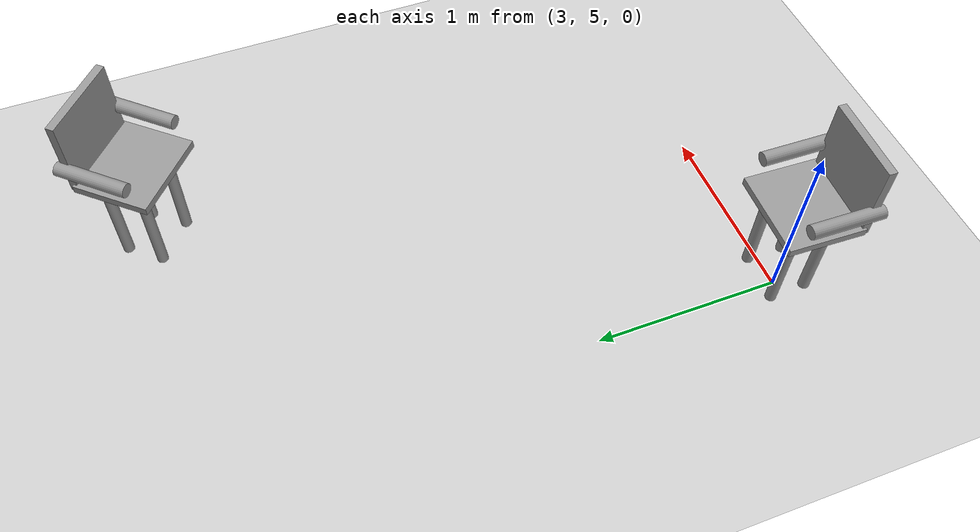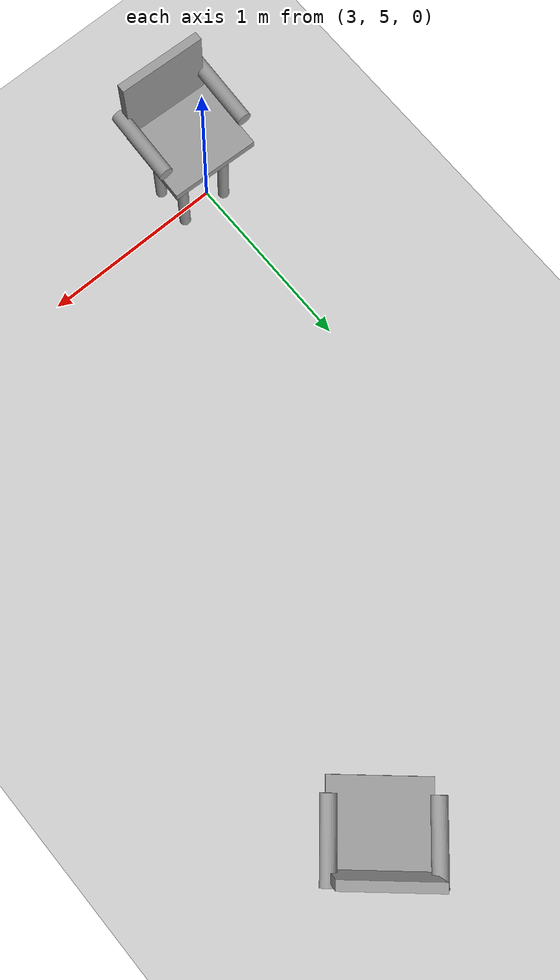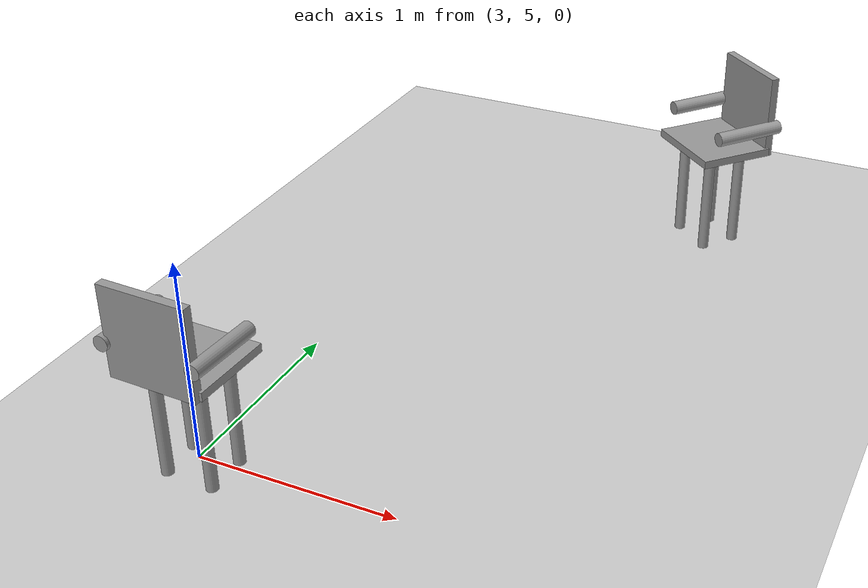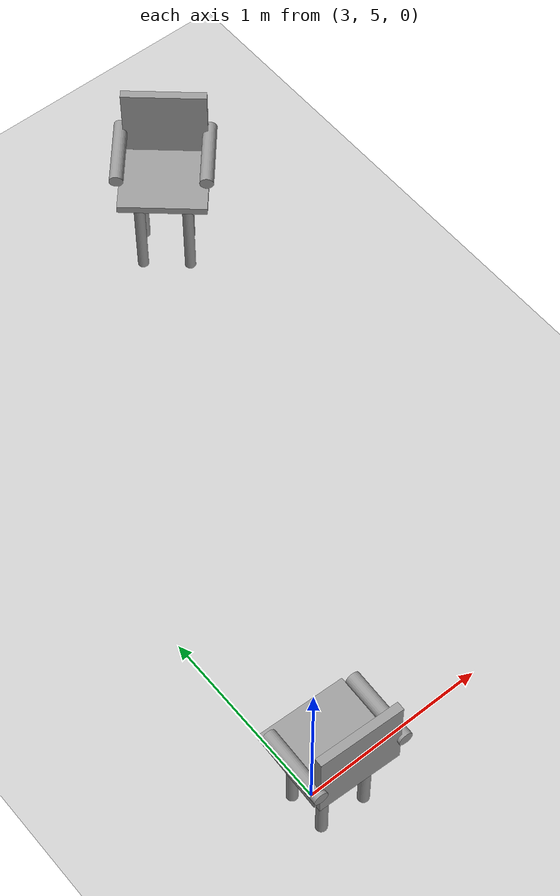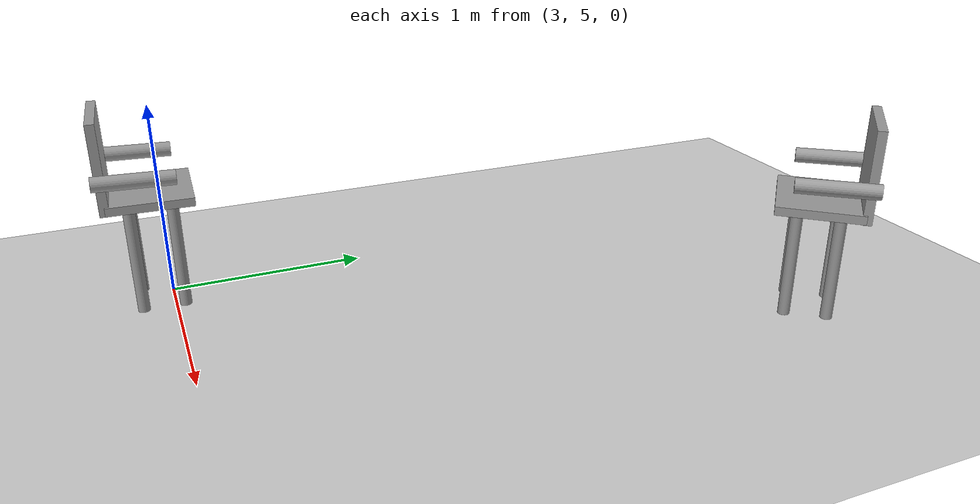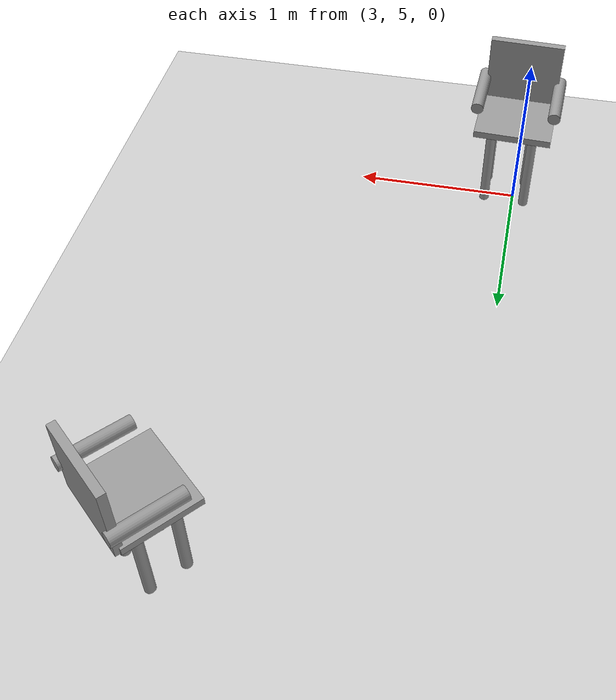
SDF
<sdf version="1.6">
 <world name="default">
  <model name="ground_plane">
   <static>1</static>
   <link name="link">
    <collision name="collision">
     <geometry><plane><normal>0 0 1</normal><size>100 100</size></plane></geometry>
     <surface>
      <contact><collide_bitmask>65535</collide_bitmask></contact>
      <friction><ode><mu>100</mu><mu2>50</mu2></ode></friction>
     </surface>
    </collision>
    <visual name="visual">
     <cast_shadows>0</cast_shadows>
     <geometry><plane><normal>0 0 1</normal><size>100 100</size></plane></geometry>
     <material>
      <script><uri>file://media/materials/scripts/gazebo.material</uri><name>Gazebo/Grey</name></script>
     </material>
    </visual>
   </link>
  </model>
  <model name="chair_clone_clone_clone">
   <link name="link_4">
    <inertial>
     <mass>0.00194051</mass>
     <inertia>
      <ixx>5.14044e-05</ixx>
      <ixy>0</ixy>
      <ixz>0</ixz>
      <iyy>5.14044e-05</iyy>
      <iyz>0</iyz>
      <izz>8.34973e-07</izz>
     </inertia>
    </inertial>
    <pose>-0.140129 -0.127166 -0.209129 0 -0 0</pose>
    <visual name="visual">
     <geometry><cylinder><radius>0.0293355</radius><length>0.561516</length></cylinder></geometry>
     <material>
      <lighting>1</lighting>
      <script><uri>file://media/materials/scripts/gazebo.material</uri><name>Gazebo/Grey</name></script>
      <emissive>0 0 0 1</emissive>
     </material>
    </visual>
    <collision name="collision">
     <geometry><cylinder><radius>0.029336</radius><length>0.561516</length></cylinder></geometry>
     <surface>
      <friction>
       <ode><mu>1</mu><mu2>1</mu2><fdir1>0 0 0</fdir1><slip1>0</slip1><slip2>0</slip2></ode>
       <torsional>
        <coefficient>1</coefficient>
        <patch_radius>0</patch_radius>
        <surface_radius>0</surface_radius>
        <use_patch_radius>1</use_patch_radius>
        <ode><slip>0</slip></ode>
       </torsional>
      </friction>
      <bounce><restitution_coefficient>0</restitution_coefficient><threshold>1e+06</threshold></bounce>
      <contact>
       <collide_without_contact>0</collide_without_contact>
       <collide_without_contact_bitmask>1</collide_without_contact_bitmask>
       <collide_bitmask>1</collide_bitmask>
       <ode>
        <soft_cfm>0</soft_cfm>
        <soft_erp>0.2</soft_erp>
        <kp>1e+13</kp>
        <kd>1</kd>
        <max_vel>0.01</max_vel>
        <min_depth>0</min_depth>
       </ode>
       <bullet>
        <split_impulse>1</split_impulse>
        <split_impulse_penetration_threshold>-0.01</split_impulse_penetration_threshold>
        <soft_cfm>0</soft_cfm>
        <soft_erp>0.2</soft_erp>
        <kp>1e+13</kp>
        <kd>1</kd>
       </bullet>
      </contact>
     </surface>
    </collision>
   </link>
   <link name="link_4_clone">
    <inertial>
     <mass>0.00194051</mass>
     <inertia>
      <ixx>5.14044e-05</ixx>
      <ixy>0</ixy>
      <ixz>0</ixz>
      <iyy>5.14044e-05</iyy>
      <iyz>0</iyz>
      <izz>8.34973e-07</izz>
     </inertia>
    </inertial>
    <pose>-0.139565 0.126187 -0.209129 0 -0 0</pose>
    <visual name="visual">
     <geometry><cylinder><radius>0.0293355</radius><length>0.561516</length></cylinder></geometry>
     <material>
      <lighting>1</lighting>
      <script><uri>file://media/materials/scripts/gazebo.material</uri><name>Gazebo/Grey</name></script>
      <shader type="pixel"/>
      <emissive>0 0 0 1</emissive>
     </material>
    </visual>
    <collision name="collision">
     <geometry><cylinder><radius>0.029336</radius><length>0.561516</length></cylinder></geometry>
     <surface>
      <friction>
       <ode><mu>1</mu><mu2>1</mu2><fdir1>0 0 0</fdir1><slip1>0</slip1><slip2>0</slip2></ode>
       <torsional>
        <coefficient>1</coefficient>
        <patch_radius>0</patch_radius>
        <surface_radius>0</surface_radius>
        <use_patch_radius>1</use_patch_radius>
        <ode><slip>0</slip></ode>
       </torsional>
      </friction>
      <bounce><restitution_coefficient>0</restitution_coefficient><threshold>1e+06</threshold></bounce>
      <contact>
       <collide_without_contact>0</collide_without_contact>
       <collide_without_contact_bitmask>1</collide_without_contact_bitmask>
       <collide_bitmask>1</collide_bitmask>
       <ode>
        <soft_cfm>0</soft_cfm>
        <soft_erp>0.2</soft_erp>
        <kp>1e+13</kp>
        <kd>1</kd>
        <max_vel>0.01</max_vel>
        <min_depth>0</min_depth>
       </ode>
       <bullet>
        <split_impulse>1</split_impulse>
        <split_impulse_penetration_threshold>-0.01</split_impulse_penetration_threshold>
        <soft_cfm>0</soft_cfm>
        <soft_erp>0.2</soft_erp>
        <kp>1e+13</kp>
        <kd>1</kd>
       </bullet>
      </contact>
     </surface>
    </collision>
   </link>
   <link name="link_4_clone_0">
    <inertial>
     <mass>0.00194051</mass>
     <inertia>
      <ixx>5.14044e-05</ixx>
      <ixy>0</ixy>
      <ixz>0</ixz>
      <iyy>5.14044e-05</iyy>
      <iyz>0</iyz>
      <izz>8.34973e-07</izz>
     </inertia>
    </inertial>
    <pose>0.062929 0.13105 -0.209129 0 -0 0</pose>
    <visual name="visual">
     <geometry><cylinder><radius>0.0293355</radius><length>0.561516</length></cylinder></geometry>
     <material>
      <lighting>1</lighting>
      <script><uri>file://media/materials/scripts/gazebo.material</uri><name>Gazebo/Grey</name></script>
      <shader type="pixel"/>
      <emissive>0 0 0 1</emissive>
     </material>
    </visual>
    <collision name="collision">
     <geometry><cylinder><radius>0.029336</radius><length>0.561516</length></cylinder></geometry>
     <surface>
      <friction>
       <ode><mu>1</mu><mu2>1</mu2><fdir1>0 0 0</fdir1><slip1>0</slip1><slip2>0</slip2></ode>
       <torsional>
        <coefficient>1</coefficient>
        <patch_radius>0</patch_radius>
        <surface_radius>0</surface_radius>
        <use_patch_radius>1</use_patch_radius>
        <ode><slip>0</slip></ode>
       </torsional>
      </friction>
      <bounce><restitution_coefficient>0</restitution_coefficient><threshold>1e+06</threshold></bounce>
      <contact>
       <collide_without_contact>0</collide_without_contact>
       <collide_without_contact_bitmask>1</collide_without_contact_bitmask>
       <collide_bitmask>1</collide_bitmask>
       <ode>
        <soft_cfm>0</soft_cfm>
        <soft_erp>0.2</soft_erp>
        <kp>1e+13</kp>
        <kd>1</kd>
        <max_vel>0.01</max_vel>
        <min_depth>0</min_depth>
       </ode>
       <bullet>
        <split_impulse>1</split_impulse>
        <split_impulse_penetration_threshold>-0.01</split_impulse_penetration_threshold>
        <soft_cfm>0</soft_cfm>
        <soft_erp>0.2</soft_erp>
        <kp>1e+13</kp>
        <kd>1</kd>
       </bullet>
      </contact>
     </surface>
    </collision>
   </link>
   <link name="link_4_clone_1">
    <inertial>
     <mass>0.00194051</mass>
     <inertia>
      <ixx>5.14044e-05</ixx>
      <ixy>0</ixy>
      <ixz>0</ixz>
      <iyy>5.14044e-05</iyy>
      <iyz>0</iyz>
      <izz>8.34973e-07</izz>
     </inertia>
    </inertial>
    <pose>0.061641 -0.111934 -0.209129 0 -0 0</pose>
    <visual name="visual">
     <geometry><cylinder><radius>0.0293355</radius><length>0.561516</length></cylinder></geometry>
     <material>
      <lighting>1</lighting>
      <script><uri>file://media/materials/scripts/gazebo.material</uri><name>Gazebo/Grey</name></script>
      <shader type="pixel"/>
      <emissive>0 0 0 1</emissive>
     </material>
    </visual>
    <collision name="collision">
     <geometry><cylinder><radius>0.029336</radius><length>0.561516</length></cylinder></geometry>
     <surface>
      <friction>
       <ode><mu>1</mu><mu2>1</mu2><fdir1>0 0 0</fdir1><slip1>0</slip1><slip2>0</slip2></ode>
       <torsional>
        <coefficient>1</coefficient>
        <patch_radius>0</patch_radius>
        <surface_radius>0</surface_radius>
        <use_patch_radius>1</use_patch_radius>
        <ode><slip>0</slip></ode>
       </torsional>
      </friction>
      <bounce><restitution_coefficient>0</restitution_coefficient><threshold>1e+06</threshold></bounce>
      <contact>
       <collide_without_contact>0</collide_without_contact>
       <collide_without_contact_bitmask>1</collide_without_contact_bitmask>
       <collide_bitmask>1</collide_bitmask>
       <ode>
        <soft_cfm>0</soft_cfm>
        <soft_erp>0.2</soft_erp>
        <kp>1e+13</kp>
        <kd>1</kd>
        <max_vel>0.01</max_vel>
        <min_depth>0</min_depth>
       </ode>
       <bullet>
        <split_impulse>1</split_impulse>
        <split_impulse_penetration_threshold>-0.01</split_impulse_penetration_threshold>
        <soft_cfm>0</soft_cfm>
        <soft_erp>0.2</soft_erp>
        <kp>1e+13</kp>
        <kd>1</kd>
       </bullet>
      </contact>
     </surface>
    </collision>
   </link>
   <link name="link_5">
    <inertial>
     <mass>0.00816884</mass>
     <inertia>
      <ixx>0.00015002</ixx>
      <ixy>0</ixy>
      <ixz>0</ixz>
      <iyy>0.000115328</iyy>
      <iyz>0</iyz>
      <izz>0.000262862</izz>
     </inertia>
    </inertial>
    <pose>-0.041662 -0.005028 0.089077 0 -0 0</pose>
    <visual name="visual">
     <geometry><box><size>0.409378 0.467496 0.042729</size></box></geometry>
     <material>
      <lighting>1</lighting>
      <script><uri>file://media/materials/scripts/gazebo.material</uri><name>Gazebo/Grey</name></script>
      <emissive>0 0 0 1</emissive>
     </material>
    </visual>
    <collision name="collision">
     <geometry><box><size>0.409378 0.467496 0.042729</size></box></geometry>
     <surface>
      <friction>
       <ode><mu>1</mu><mu2>1</mu2><fdir1>0 0 0</fdir1><slip1>0</slip1><slip2>0</slip2></ode>
       <torsional>
        <coefficient>1</coefficient>
        <patch_radius>0</patch_radius>
        <surface_radius>0</surface_radius>
        <use_patch_radius>1</use_patch_radius>
        <ode><slip>0</slip></ode>
       </torsional>
      </friction>
      <bounce><restitution_coefficient>0</restitution_coefficient><threshold>1e+06</threshold></bounce>
      <contact>
       <collide_without_contact>0</collide_without_contact>
       <collide_without_contact_bitmask>1</collide_without_contact_bitmask>
       <collide_bitmask>1</collide_bitmask>
       <ode>
        <soft_cfm>0</soft_cfm>
        <soft_erp>0.2</soft_erp>
        <kp>1e+13</kp>
        <kd>1</kd>
        <max_vel>0.01</max_vel>
        <min_depth>0</min_depth>
       </ode>
       <bullet>
        <split_impulse>1</split_impulse>
        <split_impulse_penetration_threshold>-0.01</split_impulse_penetration_threshold>
        <soft_cfm>0</soft_cfm>
        <soft_erp>0.2</soft_erp>
        <kp>1e+13</kp>
        <kd>1</kd>
       </bullet>
      </contact>
     </surface>
    </collision>
   </link>
   <link name="link_6">
    <inertial>
     <mass>0.00855687</mass>
     <inertia>
      <ixx>0.000285159</ixx>
      <ixy>0</ixy>
      <ixz>0</ixz>
      <iyy>0.000146983</iyy>
      <iyz>0</iyz>
      <izz>0.000140925</izz>
     </inertia>
    </inertial>
    <pose>0.165697 -0.006458 0.287866 0 -0 0</pose>
    <visual name="visual">
     <geometry><box><size>0.0439 0.442383 0.451884</size></box></geometry>
     <material>
      <lighting>1</lighting>
      <script><uri>file://media/materials/scripts/gazebo.material</uri><name>Gazebo/Grey</name></script>
      <emissive>0 0 0 1</emissive>
     </material>
    </visual>
    <collision name="collision">
     <geometry><box><size>0.0439 0.442383 0.451884</size></box></geometry>
     <surface>
      <friction>
       <ode><mu>1</mu><mu2>1</mu2><fdir1>0 0 0</fdir1><slip1>0</slip1><slip2>0</slip2></ode>
       <torsional>
        <coefficient>1</coefficient>
        <patch_radius>0</patch_radius>
        <surface_radius>0</surface_radius>
        <use_patch_radius>1</use_patch_radius>
        <ode><slip>0</slip></ode>
       </torsional>
      </friction>
      <bounce><restitution_coefficient>0</restitution_coefficient><threshold>1e+06</threshold></bounce>
      <contact>
       <collide_without_contact>0</collide_without_contact>
       <collide_without_contact_bitmask>1</collide_without_contact_bitmask>
       <collide_bitmask>1</collide_bitmask>
       <ode>
        <soft_cfm>0</soft_cfm>
        <soft_erp>0.2</soft_erp>
        <kp>1e+13</kp>
        <kd>1</kd>
        <max_vel>0.01</max_vel>
        <min_depth>0</min_depth>
       </ode>
       <bullet>
        <split_impulse>1</split_impulse>
        <split_impulse_penetration_threshold>-0.01</split_impulse_penetration_threshold>
        <soft_cfm>0</soft_cfm>
        <soft_erp>0.2</soft_erp>
        <kp>1e+13</kp>
        <kd>1</kd>
       </bullet>
      </contact>
     </surface>
    </collision>
   </link>
   <link name="link_7">
    <inertial>
     <mass>0.00209129</mass>
     <inertia>
      <ixx>2.57536e-05</ixx>
      <ixy>0</ixy>
      <ixz>0</ixz>
      <iyy>2.57536e-05</iyy>
      <iyz>0</iyz>
      <izz>1.44551e-06</izz>
     </inertia>
    </inertial>
    <pose>0.0147 0.228665 0.230372 0 1.55081 0</pose>
    <visual name="visual">
     <geometry><cylinder><radius>0.0371808</radius><length>0.378984</length></cylinder></geometry>
     <material>
      <lighting>1</lighting>
      <script><uri>file://media/materials/scripts/gazebo.material</uri><name>Gazebo/Grey</name></script>
      <emissive>0 0 0 1</emissive>
     </material>
    </visual>
    <collision name="collision">
     <geometry><cylinder><radius>0.037181</radius><length>0.378984</length></cylinder></geometry>
     <surface>
      <friction>
       <ode><mu>1</mu><mu2>1</mu2><fdir1>0 0 0</fdir1><slip1>0</slip1><slip2>0</slip2></ode>
       <torsional>
        <coefficient>1</coefficient>
        <patch_radius>0</patch_radius>
        <surface_radius>0</surface_radius>
        <use_patch_radius>1</use_patch_radius>
        <ode><slip>0</slip></ode>
       </torsional>
      </friction>
      <bounce><restitution_coefficient>0</restitution_coefficient><threshold>1e+06</threshold></bounce>
      <contact>
       <collide_without_contact>0</collide_without_contact>
       <collide_without_contact_bitmask>1</collide_without_contact_bitmask>
       <collide_bitmask>1</collide_bitmask>
       <ode>
        <soft_cfm>0</soft_cfm>
        <soft_erp>0.2</soft_erp>
        <kp>1e+13</kp>
        <kd>1</kd>
        <max_vel>0.01</max_vel>
        <min_depth>0</min_depth>
       </ode>
       <bullet>
        <split_impulse>1</split_impulse>
        <split_impulse_penetration_threshold>-0.01</split_impulse_penetration_threshold>
        <soft_cfm>0</soft_cfm>
        <soft_erp>0.2</soft_erp>
        <kp>1e+13</kp>
        <kd>1</kd>
       </bullet>
      </contact>
     </surface>
    </collision>
   </link>
   <link name="link_7_clone">
    <inertial>
     <mass>0.00209129</mass>
     <inertia>
      <ixx>2.57536e-05</ixx>
      <ixy>0</ixy>
      <ixz>0</ixz>
      <iyy>2.57536e-05</iyy>
      <iyz>0</iyz>
      <izz>1.44551e-06</izz>
     </inertia>
    </inertial>
    <pose>0.01639 -0.235319 0.229201 0 1.55081 0</pose>
    <visual name="visual">
     <geometry><cylinder><radius>0.0371808</radius><length>0.378984</length></cylinder></geometry>
     <material>
      <lighting>1</lighting>
      <script><uri>file://media/materials/scripts/gazebo.material</uri><name>Gazebo/Grey</name></script>
      <shader type="pixel"/>
      <emissive>0 0 0 1</emissive>
     </material>
    </visual>
    <collision name="collision">
     <geometry><cylinder><radius>0.037181</radius><length>0.378984</length></cylinder></geometry>
     <surface>
      <friction>
       <ode><mu>1</mu><mu2>1</mu2><fdir1>0 0 0</fdir1><slip1>0</slip1><slip2>0</slip2></ode>
       <torsional>
        <coefficient>1</coefficient>
        <patch_radius>0</patch_radius>
        <surface_radius>0</surface_radius>
        <use_patch_radius>1</use_patch_radius>
        <ode><slip>0</slip></ode>
       </torsional>
      </friction>
      <bounce><restitution_coefficient>0</restitution_coefficient><threshold>1e+06</threshold></bounce>
      <contact>
       <collide_without_contact>0</collide_without_contact>
       <collide_without_contact_bitmask>1</collide_without_contact_bitmask>
       <collide_bitmask>1</collide_bitmask>
       <ode>
        <soft_cfm>0</soft_cfm>
        <soft_erp>0.2</soft_erp>
        <kp>1e+13</kp>
        <kd>1</kd>
        <max_vel>0.01</max_vel>
        <min_depth>0</min_depth>
       </ode>
       <bullet>
        <split_impulse>1</split_impulse>
        <split_impulse_penetration_threshold>-0.01</split_impulse_penetration_threshold>
        <soft_cfm>0</soft_cfm>
        <soft_erp>0.2</soft_erp>
        <kp>1e+13</kp>
        <kd>1</kd>
       </bullet>
      </contact>
     </surface>
    </collision>
   </link>
   <joint name="link_5_JOINT_2" type="fixed">
    <parent>link_5</parent>
    <child>link_4_clone_1</child>
    <physics>
     <ode><limit><cfm>0</cfm><erp>0.2</erp></limit><suspension><cfm>0</cfm><erp>0.2</erp></suspension></ode>
    </physics>
   </joint>
   <joint name="link_5_JOINT_3" type="fixed">
    <parent>link_5</parent>
    <child>link_4</child>
    <physics>
     <ode><limit><cfm>0</cfm><erp>0.2</erp></limit><suspension><cfm>0</cfm><erp>0.2</erp></suspension></ode>
    </physics>
   </joint>
   <joint name="link_5_JOINT_4" type="fixed">
    <parent>link_5</parent>
    <child>link_4_clone_0</child>
    <physics>
     <ode><limit><cfm>0</cfm><erp>0.2</erp></limit><suspension><cfm>0</cfm><erp>0.2</erp></suspension></ode>
    </physics>
   </joint>
   <joint name="link_5_JOINT_5" type="fixed">
    <parent>link_5</parent>
    <child>link_4_clone</child>
    <physics>
     <ode><limit><cfm>0</cfm><erp>0.2</erp></limit><suspension><cfm>0</cfm><erp>0.2</erp></suspension></ode>
    </physics>
   </joint>
   <joint name="link_5_JOINT_6" type="fixed">
    <parent>link_5</parent>
    <child>link_6</child>
    <physics>
     <ode><limit><cfm>0</cfm><erp>0.2</erp></limit><suspension><cfm>0</cfm><erp>0.2</erp></suspension></ode>
    </physics>
   </joint>
   <joint name="link_5_JOINT_7" type="fixed">
    <parent>link_5</parent>
    <child>link_7</child>
    <physics>
     <ode><limit><cfm>0</cfm><erp>0.2</erp></limit><suspension><cfm>0</cfm><erp>0.2</erp></suspension></ode>
    </physics>
   </joint>
   <joint name="link_5_JOINT_8" type="fixed">
    <parent>link_5</parent>
    <child>link_7_clone</child>
    <physics>
     <ode><limit><cfm>0</cfm><erp>0.2</erp></limit><suspension><cfm>0</cfm><erp>0.2</erp></suspension></ode>
    </physics>
   </joint>
   <static>0</static>
   <pose>3.05256 4.91018 0.48988 6e-06 1.9e-05 -1.61042</pose>
  </model>
  <model name="chair_clone_clone_2">
   <link name="link_4">
    <inertial>
     <mass>0.00194051</mass>
     <inertia>
      <ixx>5.14044e-05</ixx>
      <ixy>0</ixy>
      <ixz>0</ixz>
      <iyy>5.14044e-05</iyy>
      <iyz>0</iyz>
      <izz>8.34973e-07</izz>
     </inertia>
    </inertial>
    <pose>-0.140129 -0.127166 -0.209129 0 -0 0</pose>
    <visual name="visual">
     <geometry><cylinder><radius>0.0293355</radius><length>0.561516</length></cylinder></geometry>
     <material>
      <lighting>1</lighting>
      <script><uri>file://media/materials/scripts/gazebo.material</uri><name>Gazebo/Grey</name></script>
      <emissive>0 0 0 1</emissive>
     </material>
    </visual>
    <collision name="collision">
     <geometry><cylinder><radius>0.029336</radius><length>0.561516</length></cylinder></geometry>
     <surface>
      <friction>
       <ode><mu>1</mu><mu2>1</mu2><fdir1>0 0 0</fdir1><slip1>0</slip1><slip2>0</slip2></ode>
       <torsional>
        <coefficient>1</coefficient>
        <patch_radius>0</patch_radius>
        <surface_radius>0</surface_radius>
        <use_patch_radius>1</use_patch_radius>
        <ode><slip>0</slip></ode>
       </torsional>
      </friction>
      <bounce><restitution_coefficient>0</restitution_coefficient><threshold>1e+06</threshold></bounce>
      <contact>
       <collide_without_contact>0</collide_without_contact>
       <collide_without_contact_bitmask>1</collide_without_contact_bitmask>
       <collide_bitmask>1</collide_bitmask>
       <ode>
        <soft_cfm>0</soft_cfm>
        <soft_erp>0.2</soft_erp>
        <kp>1e+13</kp>
        <kd>1</kd>
        <max_vel>0.01</max_vel>
        <min_depth>0</min_depth>
       </ode>
       <bullet>
        <split_impulse>1</split_impulse>
        <split_impulse_penetration_threshold>-0.01</split_impulse_penetration_threshold>
        <soft_cfm>0</soft_cfm>
        <soft_erp>0.2</soft_erp>
        <kp>1e+13</kp>
        <kd>1</kd>
       </bullet>
      </contact>
     </surface>
    </collision>
   </link>
   <link name="link_4_clone">
    <inertial>
     <mass>0.00194051</mass>
     <inertia>
      <ixx>5.14044e-05</ixx>
      <ixy>0</ixy>
      <ixz>0</ixz>
      <iyy>5.14044e-05</iyy>
      <iyz>0</iyz>
      <izz>8.34973e-07</izz>
     </inertia>
    </inertial>
    <pose>-0.139565 0.126187 -0.209129 0 -0 0</pose>
    <visual name="visual">
     <geometry><cylinder><radius>0.0293355</radius><length>0.561516</length></cylinder></geometry>
     <material>
      <lighting>1</lighting>
      <script><uri>file://media/materials/scripts/gazebo.material</uri><name>Gazebo/Grey</name></script>
      <shader type="pixel"/>
      <emissive>0 0 0 1</emissive>
     </material>
    </visual>
    <collision name="collision">
     <geometry><cylinder><radius>0.029336</radius><length>0.561516</length></cylinder></geometry>
     <surface>
      <friction>
       <ode><mu>1</mu><mu2>1</mu2><fdir1>0 0 0</fdir1><slip1>0</slip1><slip2>0</slip2></ode>
       <torsional>
        <coefficient>1</coefficient>
        <patch_radius>0</patch_radius>
        <surface_radius>0</surface_radius>
        <use_patch_radius>1</use_patch_radius>
        <ode><slip>0</slip></ode>
       </torsional>
      </friction>
      <bounce><restitution_coefficient>0</restitution_coefficient><threshold>1e+06</threshold></bounce>
      <contact>
       <collide_without_contact>0</collide_without_contact>
       <collide_without_contact_bitmask>1</collide_without_contact_bitmask>
       <collide_bitmask>1</collide_bitmask>
       <ode>
        <soft_cfm>0</soft_cfm>
        <soft_erp>0.2</soft_erp>
        <kp>1e+13</kp>
        <kd>1</kd>
        <max_vel>0.01</max_vel>
        <min_depth>0</min_depth>
       </ode>
       <bullet>
        <split_impulse>1</split_impulse>
        <split_impulse_penetration_threshold>-0.01</split_impulse_penetration_threshold>
        <soft_cfm>0</soft_cfm>
        <soft_erp>0.2</soft_erp>
        <kp>1e+13</kp>
        <kd>1</kd>
       </bullet>
      </contact>
     </surface>
    </collision>
   </link>
   <link name="link_4_clone_0">
    <inertial>
     <mass>0.00194051</mass>
     <inertia>
      <ixx>5.14044e-05</ixx>
      <ixy>0</ixy>
      <ixz>0</ixz>
      <iyy>5.14044e-05</iyy>
      <iyz>0</iyz>
      <izz>8.34973e-07</izz>
     </inertia>
    </inertial>
    <pose>0.062929 0.13105 -0.209129 0 -0 0</pose>
    <visual name="visual">
     <geometry><cylinder><radius>0.0293355</radius><length>0.561516</length></cylinder></geometry>
     <material>
      <lighting>1</lighting>
      <script><uri>file://media/materials/scripts/gazebo.material</uri><name>Gazebo/Grey</name></script>
      <shader type="pixel"/>
      <emissive>0 0 0 1</emissive>
     </material>
    </visual>
    <collision name="collision">
     <geometry><cylinder><radius>0.029336</radius><length>0.561516</length></cylinder></geometry>
     <surface>
      <friction>
       <ode><mu>1</mu><mu2>1</mu2><fdir1>0 0 0</fdir1><slip1>0</slip1><slip2>0</slip2></ode>
       <torsional>
        <coefficient>1</coefficient>
        <patch_radius>0</patch_radius>
        <surface_radius>0</surface_radius>
        <use_patch_radius>1</use_patch_radius>
        <ode><slip>0</slip></ode>
       </torsional>
      </friction>
      <bounce><restitution_coefficient>0</restitution_coefficient><threshold>1e+06</threshold></bounce>
      <contact>
       <collide_without_contact>0</collide_without_contact>
       <collide_without_contact_bitmask>1</collide_without_contact_bitmask>
       <collide_bitmask>1</collide_bitmask>
       <ode>
        <soft_cfm>0</soft_cfm>
        <soft_erp>0.2</soft_erp>
        <kp>1e+13</kp>
        <kd>1</kd>
        <max_vel>0.01</max_vel>
        <min_depth>0</min_depth>
       </ode>
       <bullet>
        <split_impulse>1</split_impulse>
        <split_impulse_penetration_threshold>-0.01</split_impulse_penetration_threshold>
        <soft_cfm>0</soft_cfm>
        <soft_erp>0.2</soft_erp>
        <kp>1e+13</kp>
        <kd>1</kd>
       </bullet>
      </contact>
     </surface>
    </collision>
   </link>
   <link name="link_4_clone_1">
    <inertial>
     <mass>0.00194051</mass>
     <inertia>
      <ixx>5.14044e-05</ixx>
      <ixy>0</ixy>
      <ixz>0</ixz>
      <iyy>5.14044e-05</iyy>
      <iyz>0</iyz>
      <izz>8.34973e-07</izz>
     </inertia>
    </inertial>
    <pose>0.061641 -0.111934 -0.209129 0 -0 0</pose>
    <visual name="visual">
     <geometry><cylinder><radius>0.0293355</radius><length>0.561516</length></cylinder></geometry>
     <material>
      <lighting>1</lighting>
      <script><uri>file://media/materials/scripts/gazebo.material</uri><name>Gazebo/Grey</name></script>
      <shader type="pixel"/>
      <emissive>0 0 0 1</emissive>
     </material>
    </visual>
    <collision name="collision">
     <geometry><cylinder><radius>0.029336</radius><length>0.561516</length></cylinder></geometry>
     <surface>
      <friction>
       <ode><mu>1</mu><mu2>1</mu2><fdir1>0 0 0</fdir1><slip1>0</slip1><slip2>0</slip2></ode>
       <torsional>
        <coefficient>1</coefficient>
        <patch_radius>0</patch_radius>
        <surface_radius>0</surface_radius>
        <use_patch_radius>1</use_patch_radius>
        <ode><slip>0</slip></ode>
       </torsional>
      </friction>
      <bounce><restitution_coefficient>0</restitution_coefficient><threshold>1e+06</threshold></bounce>
      <contact>
       <collide_without_contact>0</collide_without_contact>
       <collide_without_contact_bitmask>1</collide_without_contact_bitmask>
       <collide_bitmask>1</collide_bitmask>
       <ode>
        <soft_cfm>0</soft_cfm>
        <soft_erp>0.2</soft_erp>
        <kp>1e+13</kp>
        <kd>1</kd>
        <max_vel>0.01</max_vel>
        <min_depth>0</min_depth>
       </ode>
       <bullet>
        <split_impulse>1</split_impulse>
        <split_impulse_penetration_threshold>-0.01</split_impulse_penetration_threshold>
        <soft_cfm>0</soft_cfm>
        <soft_erp>0.2</soft_erp>
        <kp>1e+13</kp>
        <kd>1</kd>
       </bullet>
      </contact>
     </surface>
    </collision>
   </link>
   <link name="link_5">
    <inertial>
     <mass>0.00816884</mass>
     <inertia>
      <ixx>0.00015002</ixx>
      <ixy>0</ixy>
      <ixz>0</ixz>
      <iyy>0.000115328</iyy>
      <iyz>0</iyz>
      <izz>0.000262862</izz>
     </inertia>
    </inertial>
    <pose>-0.041662 -0.005028 0.089077 0 -0 0</pose>
    <visual name="visual">
     <geometry><box><size>0.409378 0.467496 0.042729</size></box></geometry>
     <material>
      <lighting>1</lighting>
      <script><uri>file://media/materials/scripts/gazebo.material</uri><name>Gazebo/Grey</name></script>
      <emissive>0 0 0 1</emissive>
     </material>
    </visual>
    <collision name="collision">
     <geometry><box><size>0.409378 0.467496 0.042729</size></box></geometry>
     <surface>
      <friction>
       <ode><mu>1</mu><mu2>1</mu2><fdir1>0 0 0</fdir1><slip1>0</slip1><slip2>0</slip2></ode>
       <torsional>
        <coefficient>1</coefficient>
        <patch_radius>0</patch_radius>
        <surface_radius>0</surface_radius>
        <use_patch_radius>1</use_patch_radius>
        <ode><slip>0</slip></ode>
       </torsional>
      </friction>
      <bounce><restitution_coefficient>0</restitution_coefficient><threshold>1e+06</threshold></bounce>
      <contact>
       <collide_without_contact>0</collide_without_contact>
       <collide_without_contact_bitmask>1</collide_without_contact_bitmask>
       <collide_bitmask>1</collide_bitmask>
       <ode>
        <soft_cfm>0</soft_cfm>
        <soft_erp>0.2</soft_erp>
        <kp>1e+13</kp>
        <kd>1</kd>
        <max_vel>0.01</max_vel>
        <min_depth>0</min_depth>
       </ode>
       <bullet>
        <split_impulse>1</split_impulse>
        <split_impulse_penetration_threshold>-0.01</split_impulse_penetration_threshold>
        <soft_cfm>0</soft_cfm>
        <soft_erp>0.2</soft_erp>
        <kp>1e+13</kp>
        <kd>1</kd>
       </bullet>
      </contact>
     </surface>
    </collision>
   </link>
   <link name="link_6">
    <inertial>
     <mass>0.00855687</mass>
     <inertia>
      <ixx>0.000285159</ixx>
      <ixy>0</ixy>
      <ixz>0</ixz>
      <iyy>0.000146983</iyy>
      <iyz>0</iyz>
      <izz>0.000140925</izz>
     </inertia>
    </inertial>
    <pose>0.165697 -0.006458 0.287866 0 -0 0</pose>
    <visual name="visual">
     <geometry><box><size>0.0439 0.442383 0.451884</size></box></geometry>
     <material>
      <lighting>1</lighting>
      <script><uri>file://media/materials/scripts/gazebo.material</uri><name>Gazebo/Grey</name></script>
      <emissive>0 0 0 1</emissive>
     </material>
    </visual>
    <collision name="collision">
     <geometry><box><size>0.0439 0.442383 0.451884</size></box></geometry>
     <surface>
      <friction>
       <ode><mu>1</mu><mu2>1</mu2><fdir1>0 0 0</fdir1><slip1>0</slip1><slip2>0</slip2></ode>
       <torsional>
        <coefficient>1</coefficient>
        <patch_radius>0</patch_radius>
        <surface_radius>0</surface_radius>
        <use_patch_radius>1</use_patch_radius>
        <ode><slip>0</slip></ode>
       </torsional>
      </friction>
      <bounce><restitution_coefficient>0</restitution_coefficient><threshold>1e+06</threshold></bounce>
      <contact>
       <collide_without_contact>0</collide_without_contact>
       <collide_without_contact_bitmask>1</collide_without_contact_bitmask>
       <collide_bitmask>1</collide_bitmask>
       <ode>
        <soft_cfm>0</soft_cfm>
        <soft_erp>0.2</soft_erp>
        <kp>1e+13</kp>
        <kd>1</kd>
        <max_vel>0.01</max_vel>
        <min_depth>0</min_depth>
       </ode>
       <bullet>
        <split_impulse>1</split_impulse>
        <split_impulse_penetration_threshold>-0.01</split_impulse_penetration_threshold>
        <soft_cfm>0</soft_cfm>
        <soft_erp>0.2</soft_erp>
        <kp>1e+13</kp>
        <kd>1</kd>
       </bullet>
      </contact>
     </surface>
    </collision>
   </link>
   <link name="link_7">
    <inertial>
     <mass>0.00209129</mass>
     <inertia>
      <ixx>2.57536e-05</ixx>
      <ixy>0</ixy>
      <ixz>0</ixz>
      <iyy>2.57536e-05</iyy>
      <iyz>0</iyz>
      <izz>1.44551e-06</izz>
     </inertia>
    </inertial>
    <pose>0.0147 0.228665 0.230372 0 1.55081 0</pose>
    <visual name="visual">
     <geometry><cylinder><radius>0.0371808</radius><length>0.378984</length></cylinder></geometry>
     <material>
      <lighting>1</lighting>
      <script><uri>file://media/materials/scripts/gazebo.material</uri><name>Gazebo/Grey</name></script>
      <emissive>0 0 0 1</emissive>
     </material>
    </visual>
    <collision name="collision">
     <geometry><cylinder><radius>0.037181</radius><length>0.378984</length></cylinder></geometry>
     <surface>
      <friction>
       <ode><mu>1</mu><mu2>1</mu2><fdir1>0 0 0</fdir1><slip1>0</slip1><slip2>0</slip2></ode>
       <torsional>
        <coefficient>1</coefficient>
        <patch_radius>0</patch_radius>
        <surface_radius>0</surface_radius>
        <use_patch_radius>1</use_patch_radius>
        <ode><slip>0</slip></ode>
       </torsional>
      </friction>
      <bounce><restitution_coefficient>0</restitution_coefficient><threshold>1e+06</threshold></bounce>
      <contact>
       <collide_without_contact>0</collide_without_contact>
       <collide_without_contact_bitmask>1</collide_without_contact_bitmask>
       <collide_bitmask>1</collide_bitmask>
       <ode>
        <soft_cfm>0</soft_cfm>
        <soft_erp>0.2</soft_erp>
        <kp>1e+13</kp>
        <kd>1</kd>
        <max_vel>0.01</max_vel>
        <min_depth>0</min_depth>
       </ode>
       <bullet>
        <split_impulse>1</split_impulse>
        <split_impulse_penetration_threshold>-0.01</split_impulse_penetration_threshold>
        <soft_cfm>0</soft_cfm>
        <soft_erp>0.2</soft_erp>
        <kp>1e+13</kp>
        <kd>1</kd>
       </bullet>
      </contact>
     </surface>
    </collision>
   </link>
   <link name="link_7_clone">
    <inertial>
     <mass>0.00209129</mass>
     <inertia>
      <ixx>2.57536e-05</ixx>
      <ixy>0</ixy>
      <ixz>0</ixz>
      <iyy>2.57536e-05</iyy>
      <iyz>0</iyz>
      <izz>1.44551e-06</izz>
     </inertia>
    </inertial>
    <pose>0.01639 -0.235319 0.229201 0 1.55081 0</pose>
    <visual name="visual">
     <geometry><cylinder><radius>0.0371808</radius><length>0.378984</length></cylinder></geometry>
     <material>
      <lighting>1</lighting>
      <script><uri>file://media/materials/scripts/gazebo.material</uri><name>Gazebo/Grey</name></script>
      <shader type="pixel"/>
      <emissive>0 0 0 1</emissive>
     </material>
    </visual>
    <collision name="collision">
     <geometry><cylinder><radius>0.037181</radius><length>0.378984</length></cylinder></geometry>
     <surface>
      <friction>
       <ode><mu>1</mu><mu2>1</mu2><fdir1>0 0 0</fdir1><slip1>0</slip1><slip2>0</slip2></ode>
       <torsional>
        <coefficient>1</coefficient>
        <patch_radius>0</patch_radius>
        <surface_radius>0</surface_radius>
        <use_patch_radius>1</use_patch_radius>
        <ode><slip>0</slip></ode>
       </torsional>
      </friction>
      <bounce><restitution_coefficient>0</restitution_coefficient><threshold>1e+06</threshold></bounce>
      <contact>
       <collide_without_contact>0</collide_without_contact>
       <collide_without_contact_bitmask>1</collide_without_contact_bitmask>
       <collide_bitmask>1</collide_bitmask>
       <ode>
        <soft_cfm>0</soft_cfm>
        <soft_erp>0.2</soft_erp>
        <kp>1e+13</kp>
        <kd>1</kd>
        <max_vel>0.01</max_vel>
        <min_depth>0</min_depth>
       </ode>
       <bullet>
        <split_impulse>1</split_impulse>
        <split_impulse_penetration_threshold>-0.01</split_impulse_penetration_threshold>
        <soft_cfm>0</soft_cfm>
        <soft_erp>0.2</soft_erp>
        <kp>1e+13</kp>
        <kd>1</kd>
       </bullet>
      </contact>
     </surface>
    </collision>
   </link>
   <joint name="link_5_JOINT_2" type="fixed">
    <parent>link_5</parent>
    <child>link_4_clone_1</child>
    <physics>
     <ode><limit><cfm>0</cfm><erp>0.2</erp></limit><suspension><cfm>0</cfm><erp>0.2</erp></suspension></ode>
    </physics>
   </joint>
   <joint name="link_5_JOINT_3" type="fixed">
    <parent>link_5</parent>
    <child>link_4</child>
    <physics>
     <ode><limit><cfm>0</cfm><erp>0.2</erp></limit><suspension><cfm>0</cfm><erp>0.2</erp></suspension></ode>
    </physics>
   </joint>
   <joint name="link_5_JOINT_4" type="fixed">
    <parent>link_5</parent>
    <child>link_4_clone_0</child>
    <physics>
     <ode><limit><cfm>0</cfm><erp>0.2</erp></limit><suspension><cfm>0</cfm><erp>0.2</erp></suspension></ode>
    </physics>
   </joint>
   <joint name="link_5_JOINT_5" type="fixed">
    <parent>link_5</parent>
    <child>link_4_clone</child>
    <physics>
     <ode><limit><cfm>0</cfm><erp>0.2</erp></limit><suspension><cfm>0</cfm><erp>0.2</erp></suspension></ode>
    </physics>
   </joint>
   <joint name="link_5_JOINT_6" type="fixed">
    <parent>link_5</parent>
    <child>link_6</child>
    <physics>
     <ode><limit><cfm>0</cfm><erp>0.2</erp></limit><suspension><cfm>0</cfm><erp>0.2</erp></suspension></ode>
    </physics>
   </joint>
   <joint name="link_5_JOINT_7" type="fixed">
    <parent>link_5</parent>
    <child>link_7</child>
    <physics>
     <ode><limit><cfm>0</cfm><erp>0.2</erp></limit><suspension><cfm>0</cfm><erp>0.2</erp></suspension></ode>
    </physics>
   </joint>
   <joint name="link_5_JOINT_8" type="fixed">
    <parent>link_5</parent>
    <child>link_7_clone</child>
    <physics>
     <ode><limit><cfm>0</cfm><erp>0.2</erp></limit><suspension><cfm>0</cfm><erp>0.2</erp></suspension></ode>
    </physics>
   </joint>
   <static>0</static>
   <pose>4.46566 7.97973 0.489879 5e-06 3.1e-05 0.855572</pose>
  </model>
 </world>
</sdf>
